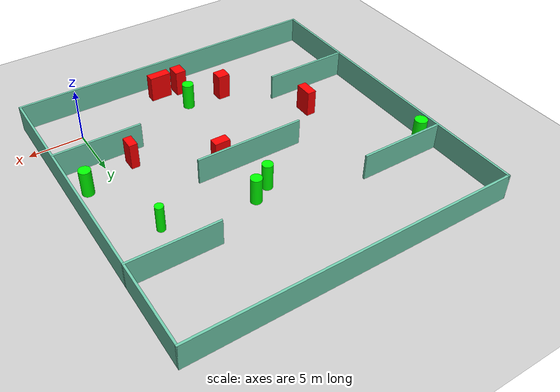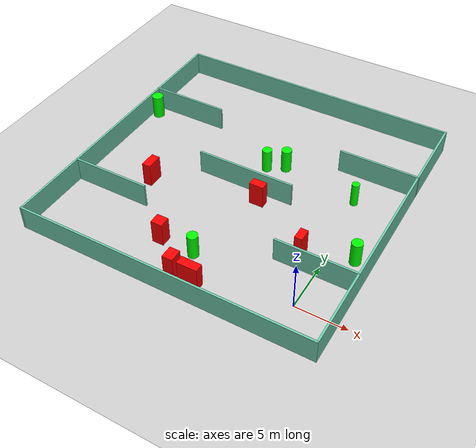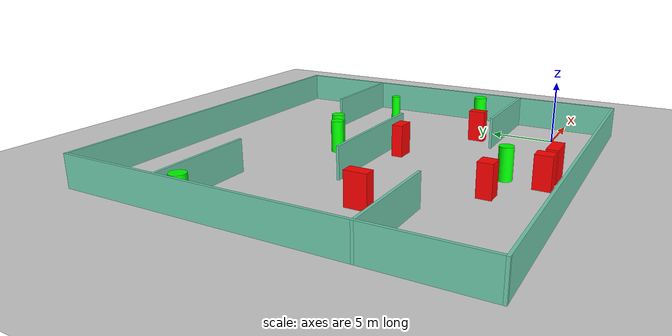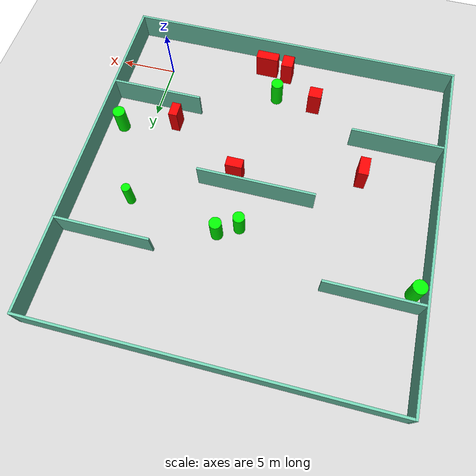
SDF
<sdf version="1.7">
 <world name="default">
  <light name="sun" type="directional">
   <pose>0 0 10 0 -0 0</pose>
   <diffuse>0.8 0.8 0.8 1</diffuse>
   <specular>0.2 0.2 0.2 1</specular>
   <attenuation>
    <range>1000</range>
    <constant>0.9</constant>
    <linear>0.01</linear>
    <quadratic>0.001</quadratic>
   </attenuation>
   <direction>-0.5 0.1 -0.9</direction>
   <spot><inner_angle>0</inner_angle><outer_angle>0</outer_angle><falloff>0</falloff></spot>
  </light>
  <model name="ground_plane">
   <static>1</static>
   <link name="link">
    <collision name="collision">
     <geometry><plane><normal>0 0 1</normal><size>100 100</size></plane></geometry>
     <surface>
      <contact><collide_bitmask>65535</collide_bitmask></contact>
      <friction><ode><mu>100</mu><mu2>50</mu2></ode></friction>
     </surface>
    </collision>
    <visual name="visual">
     <cast_shadows>0</cast_shadows>
     <geometry><plane><normal>0 0 1</normal><size>100 100</size></plane></geometry>
     <material>
      <script><uri>file://media/materials/scripts/gazebo.material</uri><name>Gazebo/Grey</name></script>
     </material>
    </visual>
   </link>
  </model>
  <gravity>0 0 -9.8</gravity>
  <magnetic_field>6e-06 2.3e-05 -4.2e-05</magnetic_field>
  <atmosphere type="adiabatic"/>
  <physics type="ode">
   <max_step_size>0.001</max_step_size>
   <real_time_factor>1</real_time_factor>
   <real_time_update_rate>1000</real_time_update_rate>
  </physics>
  <scene><ambient>0.4 0.4 0.4 1</ambient><background>0.7 0.7 0.7 1</background><shadows>1</shadows></scene>
  <spherical_coordinates>
   <surface_model>EARTH_WGS84</surface_model>
   <latitude_deg>0</latitude_deg>
   <longitude_deg>0</longitude_deg>
   <elevation>0</elevation>
   <heading_deg>0</heading_deg>
  </spherical_coordinates>
  <model name="my_base_walls">
   <link name="Wall_10">
    <collision name="Wall_10_Collision">
     <geometry><box><size>8.2 0.2 2.5</size></box></geometry>
     <pose>0 0 1.25 0 -0 0</pose>
    </collision>
    <visual name="Wall_10_Visual">
     <pose>0 0 1.25 0 -0 0</pose>
     <geometry><box><size>8.2 0.2 2.5</size></box></geometry>
     <material>
      <script><uri>file://media/materials/scripts/gazebo.material</uri><name>Gazebo/Grey</name></script>
      <ambient>0.435294 0.796078 0.67451 1</ambient>
     </material>
     <meta><layer>0</layer></meta>
    </visual>
    <pose>-11 -7 0 0 -0 0</pose>
   </link>
   <link name="Wall_12">
    <collision name="Wall_12_Collision">
     <geometry><box><size>8.2 0.2 2.5</size></box></geometry>
     <pose>0 0 1.25 0 -0 0</pose>
    </collision>
    <visual name="Wall_12_Visual">
     <pose>0 0 1.25 0 -0 0</pose>
     <geometry><box><size>8.2 0.2 2.5</size></box></geometry>
     <material>
      <script><uri>file://media/materials/scripts/gazebo.material</uri><name>Gazebo/Grey</name></script>
      <ambient>0.435294 0.796078 0.67451 1</ambient>
     </material>
     <meta><layer>0</layer></meta>
    </visual>
    <pose>-11 7 0 0 -0 0</pose>
   </link>
   <link name="Wall_14">
    <collision name="Wall_14_Collision">
     <geometry><box><size>8.2 0.2 2.5</size></box></geometry>
     <pose>0 0 1.25 0 -0 0</pose>
    </collision>
    <visual name="Wall_14_Visual">
     <pose>0 0 1.25 0 -0 0</pose>
     <geometry><box><size>8.2 0.2 2.5</size></box></geometry>
     <material>
      <script><uri>file://media/materials/scripts/gazebo.material</uri><name>Gazebo/Grey</name></script>
      <ambient>0.435294 0.796078 0.67451 1</ambient>
     </material>
     <meta><layer>0</layer></meta>
    </visual>
    <pose>11 7 0 0 -0 3.14159</pose>
   </link>
   <link name="Wall_16">
    <collision name="Wall_16_Collision">
     <geometry><box><size>10.2 0.2 2.5</size></box></geometry>
     <pose>0 0 1.25 0 -0 0</pose>
    </collision>
    <visual name="Wall_16_Visual">
     <pose>0 0 1.25 0 -0 0</pose>
     <geometry><box><size>10.2 0.2 2.5</size></box></geometry>
     <material>
      <script><uri>file://media/materials/scripts/gazebo.material</uri><name>Gazebo/Grey</name></script>
      <ambient>0.435294 0.796078 0.67451 1</ambient>
     </material>
     <meta><layer>0</layer></meta>
    </visual>
    <pose>0 0 0 0 -0 3.14159</pose>
   </link>
   <link name="Wall_2">
    <collision name="Wall_2_Collision">
     <geometry><box><size>30.2 0.2 2.5</size></box></geometry>
     <pose>0 0 1.25 0 -0 0</pose>
    </collision>
    <visual name="Wall_2_Visual">
     <pose>0 0 1.25 0 -0 0</pose>
     <geometry><box><size>30.2 0.2 2.5</size></box></geometry>
     <material>
      <script><uri>file://media/materials/scripts/gazebo.material</uri><name>Gazebo/Grey</name></script>
      <ambient>0.435294 0.796078 0.67451 1</ambient>
     </material>
     <meta><layer>0</layer></meta>
    </visual>
    <pose>0 -15 0 0 -0 3.14159</pose>
   </link>
   <link name="Wall_3">
    <collision name="Wall_3_Collision">
     <geometry><box><size>30.2 0.2 2.5</size></box></geometry>
     <pose>0 0 1.25 0 -0 0</pose>
    </collision>
    <visual name="Wall_3_Visual">
     <pose>0 0 1.25 0 -0 0</pose>
     <geometry><box><size>30.2 0.2 2.5</size></box></geometry>
     <material>
      <script><uri>file://media/materials/scripts/gazebo.material</uri><name>Gazebo/Grey</name></script>
      <ambient>0.435294 0.796078 0.67451 1</ambient>
     </material>
     <meta><layer>0</layer></meta>
    </visual>
    <pose>-15 0 0 0 -0 1.5708</pose>
   </link>
   <link name="Wall_4">
    <collision name="Wall_4_Collision">
     <geometry><box><size>30.2 0.2 2.5</size></box></geometry>
     <pose>0 0 1.25 0 -0 0</pose>
    </collision>
    <visual name="Wall_4_Visual">
     <pose>0 0 1.25 0 -0 0</pose>
     <geometry><box><size>30.2 0.2 2.5</size></box></geometry>
     <material>
      <script><uri>file://media/materials/scripts/gazebo.material</uri><name>Gazebo/Grey</name></script>
      <ambient>0.435294 0.796078 0.67451 1</ambient>
     </material>
     <meta><layer>0</layer></meta>
    </visual>
    <pose>0 15 0 0 -0 0</pose>
   </link>
   <link name="Wall_6">
    <collision name="Wall_6_Collision">
     <geometry><box><size>30.2 0.2 2.5</size></box></geometry>
     <pose>0 0 1.25 0 -0 0</pose>
    </collision>
    <visual name="Wall_6_Visual">
     <pose>0 0 1.25 0 -0 0</pose>
     <geometry><box><size>30.2 0.2 2.5</size></box></geometry>
     <material>
      <script><uri>file://media/materials/scripts/gazebo.material</uri><name>Gazebo/Grey</name></script>
      <ambient>0.435294 0.796078 0.67451 1</ambient>
     </material>
     <meta><layer>0</layer></meta>
    </visual>
    <pose>15 0 0 0 -0 1.5708</pose>
   </link>
   <link name="Wall_8">
    <collision name="Wall_8_Collision">
     <geometry><box><size>8.2 0.2 2.5</size></box></geometry>
     <pose>0 0 1.25 0 -0 0</pose>
    </collision>
    <visual name="Wall_8_Visual">
     <pose>0 0 1.25 0 -0 0</pose>
     <geometry><box><size>8.2 0.2 2.5</size></box></geometry>
     <material>
      <script><uri>file://media/materials/scripts/gazebo.material</uri><name>Gazebo/Grey</name></script>
      <ambient>0.435294 0.796078 0.67451 1</ambient>
     </material>
     <meta><layer>0</layer></meta>
    </visual>
    <pose>11 -7 0 0 -0 3.14159</pose>
   </link>
   <static>1</static>
   <pose>-11 11 0 0 -0 0</pose>
  </model>
  <model name="cylinder1">
   <static>1</static>
   <link name="link">
    <inertial>
     <mass>1</mass>
     <inertia><ixx>0.5</ixx><ixy>0</ixy><ixz>0</ixz><iyy>0.5</iyy><iyz>0</iyz><izz>1</izz></inertia>
    </inertial>
    <collision name="collision">
     <geometry><cylinder><radius>0.5342235295929876</radius><length>2.5</length></cylinder></geometry>
    </collision>
    <visual name="visual">
     <geometry><cylinder><radius>0.5342235295929876</radius><length>2.5</length></cylinder></geometry>
     <material>
      <ambient>0 1 0 1</ambient>
      <diffuse>0 1 0 1</diffuse>
      <specular>0.1 0.1 0.1 1</specular>
      <emissive>0 0 0 0</emissive>
     </material>
    </visual>
   </link>
   <pose>-10.518074268993544 0.7970090579205769 1.25 0 0 0</pose>
  </model>
  <model name="cylinder2">
   <static>1</static>
   <link name="link">
    <inertial>
     <mass>1</mass>
     <inertia><ixx>0.5</ixx><ixy>0</ixy><ixz>0</ixz><iyy>0.5</iyy><iyz>0</iyz><izz>1</izz></inertia>
    </inertial>
    <collision name="collision">
     <geometry><cylinder><radius>0.54324796027807</radius><length>2.5</length></cylinder></geometry>
    </collision>
    <visual name="visual">
     <geometry><cylinder><radius>0.54324796027807</radius><length>2.5</length></cylinder></geometry>
     <material>
      <ambient>0 1 0 1</ambient>
      <diffuse>0 1 0 1</diffuse>
      <specular>0.1 0.1 0.1 1</specular>
      <emissive>0 0 0 0</emissive>
     </material>
    </visual>
   </link>
   <pose>2.4461417397565803 7.173662006024353 1.25 0 0 0</pose>
  </model>
  <model name="cylinder3">
   <static>1</static>
   <link name="link">
    <inertial>
     <mass>1</mass>
     <inertia><ixx>0.5</ixx><ixy>0</ixy><ixz>0</ixz><iyy>0.5</iyy><iyz>0</iyz><izz>1</izz></inertia>
    </inertial>
    <collision name="collision">
     <geometry><cylinder><radius>0.5918085726017175</radius><length>2.5</length></cylinder></geometry>
    </collision>
    <visual name="visual">
     <geometry><cylinder><radius>0.5918085726017175</radius><length>2.5</length></cylinder></geometry>
     <material>
      <ambient>0 1 0 1</ambient>
      <diffuse>0 1 0 1</diffuse>
      <specular>0.1 0.1 0.1 1</specular>
      <emissive>0 0 0 0</emissive>
     </material>
    </visual>
   </link>
   <pose>-25.234621669877292 16.695081602066054 1.25 0 0 0</pose>
  </model>
  <model name="cylinder4">
   <static>1</static>
   <link name="link">
    <inertial>
     <mass>1</mass>
     <inertia><ixx>0.5</ixx><ixy>0</ixy><ixz>0</ixz><iyy>0.5</iyy><iyz>0</iyz><izz>1</izz></inertia>
    </inertial>
    <collision name="collision">
     <geometry><cylinder><radius>0.4928312636618224</radius><length>2.5</length></cylinder></geometry>
    </collision>
    <visual name="visual">
     <geometry><cylinder><radius>0.4928312636618224</radius><length>2.5</length></cylinder></geometry>
     <material>
      <ambient>0 1 0 1</ambient>
      <diffuse>0 1 0 1</diffuse>
      <specular>0.1 0.1 0.1 1</specular>
      <emissive>0 0 0 0</emissive>
     </material>
    </visual>
   </link>
   <pose>-10.469207860974574 14.47007125329134 1.25 0 0 0</pose>
  </model>
  <model name="cylinder5">
   <static>1</static>
   <link name="link">
    <inertial>
     <mass>1</mass>
     <inertia><ixx>0.5</ixx><ixy>0</ixy><ixz>0</ixz><iyy>0.5</iyy><iyz>0</iyz><izz>1</izz></inertia>
    </inertial>
    <collision name="collision">
     <geometry><cylinder><radius>0.38139511416146893</radius><length>2.5</length></cylinder></geometry>
    </collision>
    <visual name="visual">
     <geometry><cylinder><radius>0.38139511416146893</radius><length>2.5</length></cylinder></geometry>
     <material>
      <ambient>0 1 0 1</ambient>
      <diffuse>0 1 0 1</diffuse>
      <specular>0.1 0.1 0.1 1</specular>
      <emissive>0 0 0 0</emissive>
     </material>
    </visual>
   </link>
   <pose>-0.7508123706882337 14.1368210167122 1.25 0 0 0</pose>
  </model>
  <model name="cylinder6">
   <static>1</static>
   <link name="link">
    <inertial>
     <mass>1</mass>
     <inertia><ixx>0.5</ixx><ixy>0</ixy><ixz>0</ixz><iyy>0.5</iyy><iyz>0</iyz><izz>1</izz></inertia>
    </inertial>
    <collision name="collision">
     <geometry><cylinder><radius>0.5188422344428032</radius><length>2.5</length></cylinder></geometry>
    </collision>
    <visual name="visual">
     <geometry><cylinder><radius>0.5188422344428032</radius><length>2.5</length></cylinder></geometry>
     <material>
      <ambient>0 1 0 1</ambient>
      <diffuse>0 1 0 1</diffuse>
      <specular>0.1 0.1 0.1 1</specular>
      <emissive>0 0 0 0</emissive>
     </material>
    </visual>
   </link>
   <pose>-8.774725426230013 15.411783139605024 1.25 0 0 0</pose>
  </model>
  <model name="box1">
   <static>1</static>
   <link name="link">
    <inertial>
     <mass>1</mass>
     <inertia><ixx>0.083</ixx><ixy>0</ixy><ixz>0</ixz><iyy>0.083</iyy><iyz>0</iyz><izz>0.083</izz></inertia>
    </inertial>
    <collision name="collision">
     <geometry><box><size>1.1705327054610368 1.106513723508459 2.5</size></box></geometry>
    </collision>
    <visual name="visual">
     <geometry><box><size>1.1705327054610368 1.106513723508459 2.5</size></box></geometry>
     <material>
      <ambient>1 0 0 1</ambient>
      <diffuse>1 0 0 1</diffuse>
      <specular>0.1 0.1 0.1 1</specular>
      <emissive>0 0 0 0</emissive>
     </material>
    </visual>
    <sensor name="my_contact" type="contact">
     <contact><collision>box_collision</collision><topic>__default_topic__</topic></contact>
    </sensor>
   </link>
   <pose>-14.095985389260711 0.9335343175802948 1.25 0 0 0</pose>
  </model>
  <model name="box2">
   <static>1</static>
   <link name="link">
    <inertial>
     <mass>1</mass>
     <inertia><ixx>0.083</ixx><ixy>0</ixy><ixz>0</ixz><iyy>0.083</iyy><iyz>0</iyz><izz>0.083</izz></inertia>
    </inertial>
    <collision name="collision">
     <geometry><box><size>1.4586123578457597 0.8579328587936133 2.5</size></box></geometry>
    </collision>
    <visual name="visual">
     <geometry><box><size>1.4586123578457597 0.8579328587936133 2.5</size></box></geometry>
     <material>
      <ambient>1 0 0 1</ambient>
      <diffuse>1 0 0 1</diffuse>
      <specular>0.1 0.1 0.1 1</specular>
      <emissive>0 0 0 0</emissive>
     </material>
    </visual>
    <sensor name="my_contact" type="contact">
     <contact><collision>box_collision</collision><topic>__default_topic__</topic></contact>
    </sensor>
   </link>
   <pose>-8.834432343243385 9.68070991741833 1.25 0 0 0</pose>
  </model>
  <model name="box3">
   <static>1</static>
   <link name="link">
    <inertial>
     <mass>1</mass>
     <inertia><ixx>0.083</ixx><ixy>0</ixy><ixz>0</ixz><iyy>0.083</iyy><iyz>0</iyz><izz>0.083</izz></inertia>
    </inertial>
    <collision name="collision">
     <geometry><box><size>1.0437308434660548 1.278142128893641 2.5</size></box></geometry>
    </collision>
    <visual name="visual">
     <geometry><box><size>1.0437308434660548 1.278142128893641 2.5</size></box></geometry>
     <material>
      <ambient>1 0 0 1</ambient>
      <diffuse>1 0 0 1</diffuse>
      <specular>0.1 0.1 0.1 1</specular>
      <emissive>0 0 0 0</emissive>
     </material>
    </visual>
    <sensor name="my_contact" type="contact">
     <contact><collision>box_collision</collision><topic>__default_topic__</topic></contact>
    </sensor>
   </link>
   <pose>-10.911489769729592 -1.9612870631161483 1.25 0 0 0</pose>
  </model>
  <model name="box4">
   <static>1</static>
   <link name="link">
    <inertial>
     <mass>1</mass>
     <inertia><ixx>0.083</ixx><ixy>0</ixy><ixz>0</ixz><iyy>0.083</iyy><iyz>0</iyz><izz>0.083</izz></inertia>
    </inertial>
    <collision name="collision">
     <geometry><box><size>0.7765106408855678 1.3089802227382479 2.5</size></box></geometry>
    </collision>
    <visual name="visual">
     <geometry><box><size>0.7765106408855678 1.3089802227382479 2.5</size></box></geometry>
     <material>
      <ambient>1 0 0 1</ambient>
      <diffuse>1 0 0 1</diffuse>
      <specular>0.1 0.1 0.1 1</specular>
      <emissive>0 0 0 0</emissive>
     </material>
    </visual>
    <sensor name="my_contact" type="contact">
     <contact><collision>box_collision</collision><topic>__default_topic__</topic></contact>
    </sensor>
   </link>
   <pose>-2.2765655091717854 5.725468893752993 1.25 0 0 0</pose>
  </model>
  <model name="box5">
   <static>1</static>
   <link name="link">
    <inertial>
     <mass>1</mass>
     <inertia><ixx>0.083</ixx><ixy>0</ixy><ixz>0</ixz><iyy>0.083</iyy><iyz>0</iyz><izz>0.083</izz></inertia>
    </inertial>
    <collision name="collision">
     <geometry><box><size>2.0324575451447764 0.8675127894934709 2.5</size></box></geometry>
    </collision>
    <visual name="visual">
     <geometry><box><size>2.0324575451447764 0.8675127894934709 2.5</size></box></geometry>
     <material>
      <ambient>1 0 0 1</ambient>
      <diffuse>1 0 0 1</diffuse>
      <specular>0.1 0.1 0.1 1</specular>
      <emissive>0 0 0 0</emissive>
     </material>
    </visual>
    <sensor name="my_contact" type="contact">
     <contact><collision>box_collision</collision><topic>__default_topic__</topic></contact>
    </sensor>
   </link>
   <pose>-8.94149699502385 -2.1587152474935687 1.25 0 0 0</pose>
  </model>
  <model name="box6">
   <static>1</static>
   <link name="link">
    <inertial>
     <mass>1</mass>
     <inertia><ixx>0.083</ixx><ixy>0</ixy><ixz>0</ixz><iyy>0.083</iyy><iyz>0</iyz><izz>0.083</izz></inertia>
    </inertial>
    <collision name="collision">
     <geometry><box><size>0.8788121441303242 1.6849026862067236 2.5</size></box></geometry>
    </collision>
    <visual name="visual">
     <geometry><box><size>0.8788121441303242 1.6849026862067236 2.5</size></box></geometry>
     <material>
      <ambient>1 0 0 1</ambient>
      <diffuse>1 0 0 1</diffuse>
      <specular>0.1 0.1 0.1 1</specular>
      <emissive>0 0 0 0</emissive>
     </material>
    </visual>
    <sensor name="my_contact" type="contact">
     <contact><collision>box_collision</collision><topic>__default_topic__</topic></contact>
    </sensor>
   </link>
   <pose>-19.566815194555836 7.359730648631446 1.25 0 0 0</pose>
  </model>
 </world>
</sdf>
